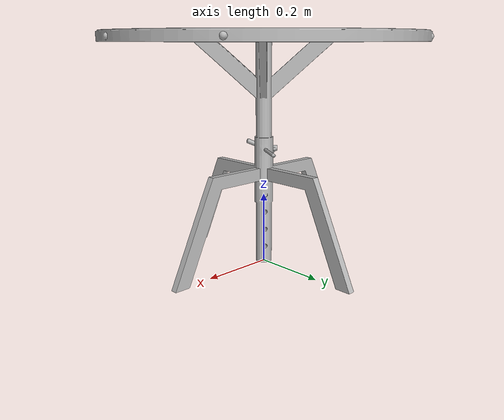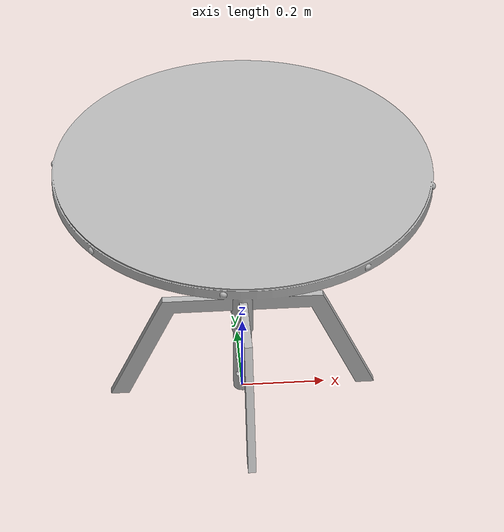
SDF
<sdf version="1.6">
	<model name="DiningTables_O8655cfdbca28_lod0">
		<link name="main_link">
			<visual name="visual_RootNode">
				<geometry>
					<mesh>
						<uri>model://DiningTables_O8655cfdbca28_lod0/meshes/visual_RootNode.dae</uri>
					</mesh>
				</geometry>
			</visual>
			<collision name="collision_RootNode_lod0_0">
				<geometry>
					<mesh>
						<uri>model://DiningTables_O8655cfdbca28_lod0/meshes/collision_RootNode_lod0_0.dae</uri>
					</mesh>
				</geometry>
			</collision>
		</link>
	</model>
</sdf>
